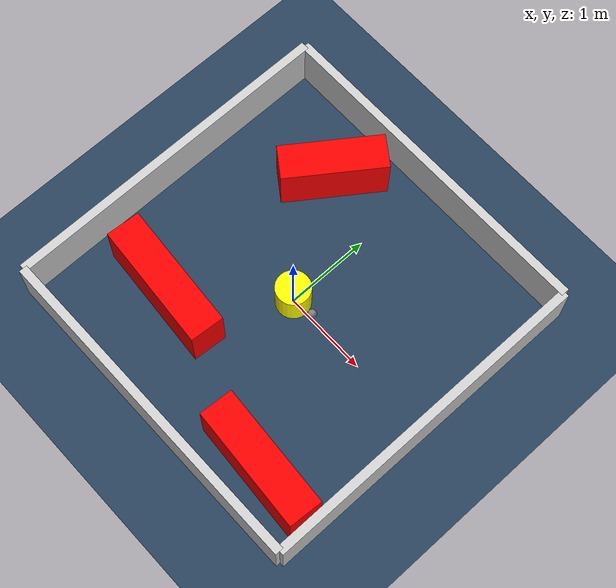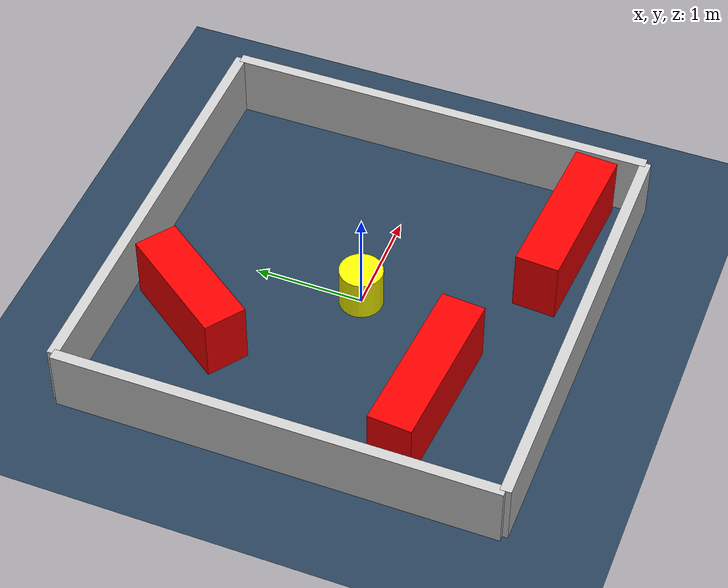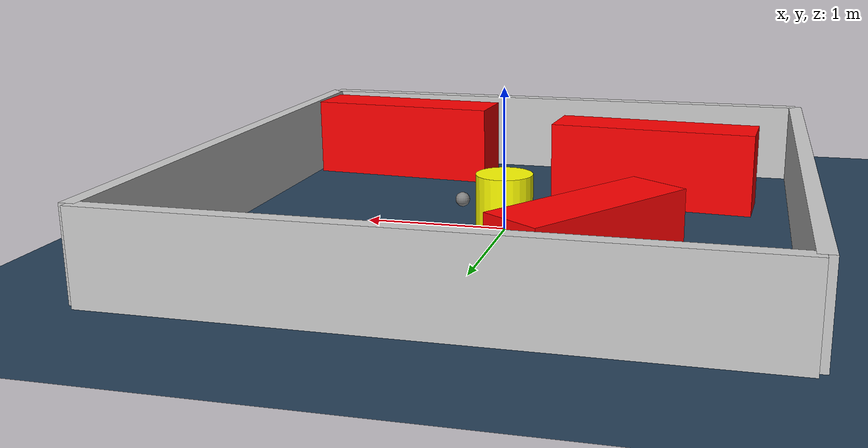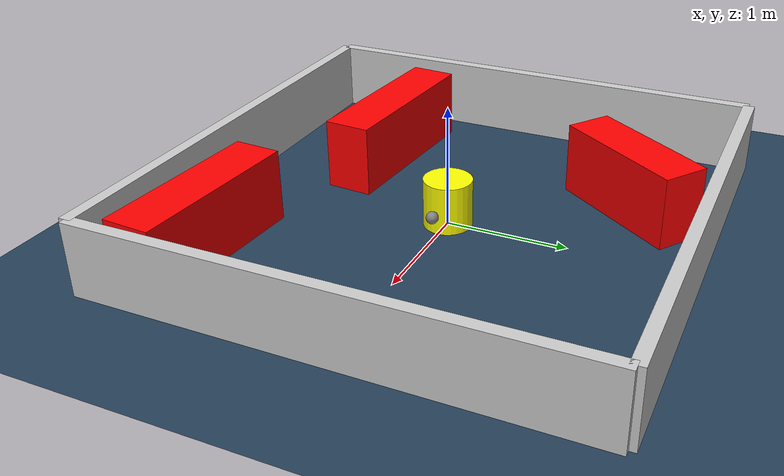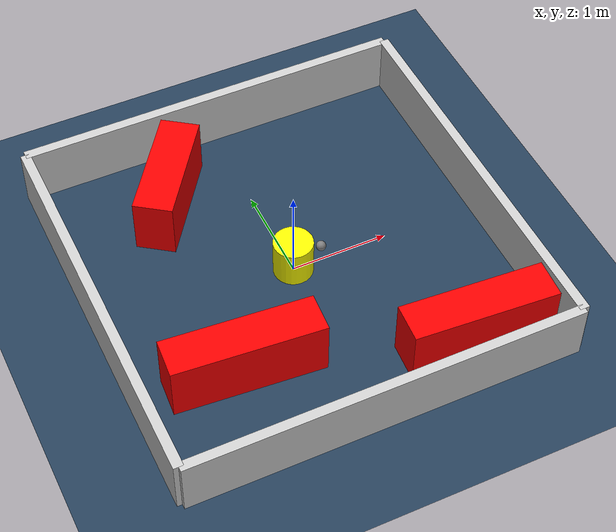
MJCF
<?xml version="1.0" ?>
<mujoco model="generated_environment">
  <option timestep="0.01" integrator="RK4" cone="elliptic"/>
  <default>
    <geom density="1"/>
  </default>
  <asset>
    <texture builtin="gradient" height="3072" rgb1="0.3 0.5 0.7" rgb2="0 0 0" type="skybox" width="512"/>
    <texture builtin="checker" height="300" mark="edge" markrgb="0.8 0.8 0.8" name="groundplane" rgb1="0.2 0.3 0.4" rgb2="0.1 0.2 0.3" type="2d" width="300"/>
    <material name="groundplane" reflectance="0.2" texrepeat="5 5" texture="groundplane" texuniform="true"/>
    <material name="robot" rgba="0.0 1.0 0.0 1"/>
  </asset>
  <worldbody>
    <light dir="0 0 -1" directional="true" pos="0 0 1.5"/>
    <geom condim="4" friction="1.0 0.005 0.001" material="groundplane" name="floor" size="0 0 0.05" type="plane"/>
    <body name="walls">
      <geom name="wall_1" condim="4" pos="-2.0 0.0 0.3" rgba="0.800000011920929 0.800000011920929 0.800000011920929 1.0" size="0.05 2.0 0.3" type="box"/>
      <geom name="wall_2" condim="4" pos="2.0 0.0 0.3" rgba="0.800000011920929 0.800000011920929 0.800000011920929 1.0" size="0.05 2.0 0.3" type="box"/>
      <geom name="wall_3" condim="4" pos="0.0 -2.0 0.3" rgba="0.800000011920929 0.800000011920929 0.800000011920929 1.0" size="2.0 0.05 0.3" type="box"/>
      <geom name="wall_4" condim="4" pos="0.0 2.0 0.3" rgba="0.800000011920929 0.800000011920929 0.800000011920929 1.0" size="2.0 0.05 0.3" type="box"/>
    </body>
    <body name="robot">
      <joint name="joint_x" type="slide" pos="0 0 0" axis="1 0 0"/>
      <joint name="joint_y" type="slide" pos="0 0 0" axis="0 1 0"/>
      <geom name="robot" type="sphere" pos="0.3 0.0 0.2" size="0.05" mass="5." friction="1.0 0.005 0.0001" condim="4" rgba="0.5 0.5 0.5 1.0"/>
      <site name="sensor_ball"/>
    </body>
    <body name="obstacle_movable_1">
      <geom name="obstacle_movable_1" condim="4" pos="0.0 0.0 0.2" euler="0 0 0.0" friction="1.0 0.005 0.001" rgba="1.0 1.0 0.0 1.0" size="0.2 0.2 0.0" type="cylinder" mass="0.1"/>
      <joint type="free"/>
    </body>
    <body name="obstacle_2_static">
      <geom name="obstacle_2_static" condim="4" pos="-0.9448747418868748 -0.9582126247851391 0.3" euler="0 0 355.5735144609892" friction="1.0 0.005 0.001" rgba="1 0 0 1" size="0.7528634384805035 0.2 0.3" type="box"/>
    </body>
    <body name="obstacle_3_static">
      <geom name="obstacle_3_static" condim="4" pos="-0.7769896093440941 1.290957386788388 0.3" euler="0 0 54.560825565245764" friction="1.0 0.005 0.001" rgba="1 0 0 1" size="0.5971941973435264 0.2 0.3" type="box"/>
    </body>
    <body name="obstacle_4_static">
      <geom name="obstacle_4_static" condim="4" pos="1.1764580484709644 -1.5133241511800932 0.3" euler="0 0 356.1539237451545" friction="1.0 0.005 0.001" rgba="1 0 0 1" size="0.7311112725373601 0.2 0.3" type="box"/>
    </body>
  </worldbody>
  <actuator>
    <motor name="actuator_x" joint="joint_x" gear="1" ctrlrange="-1 1"/>
    <motor name="actuator_y" joint="joint_y" gear="1" ctrlrange="-1 1"/>
  </actuator>
</mujoco>
